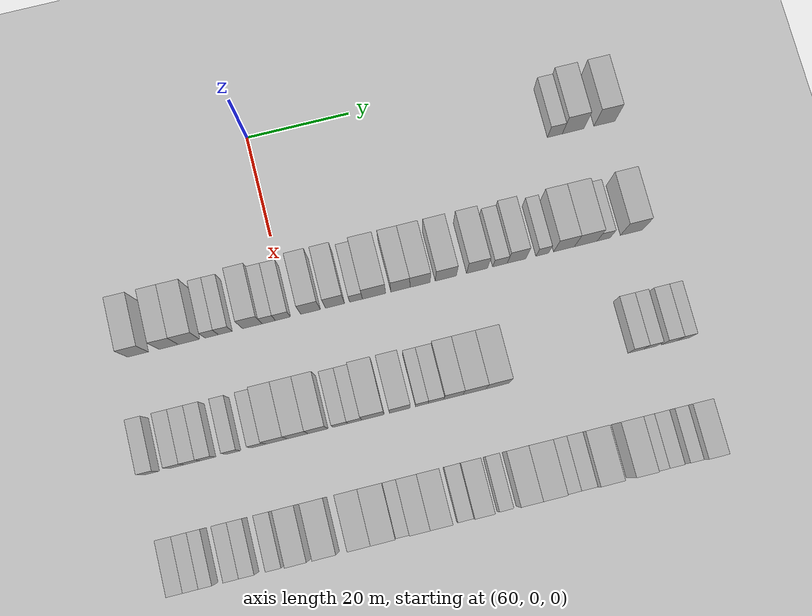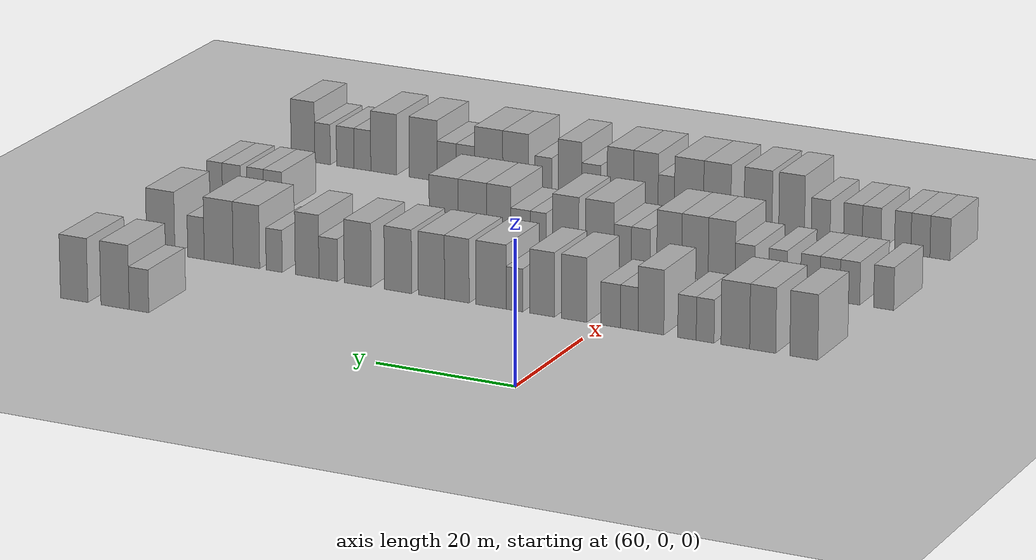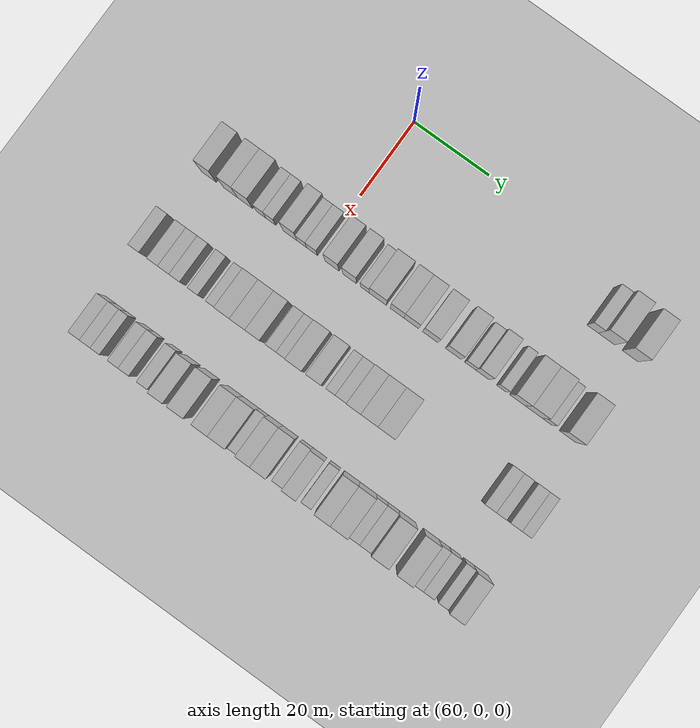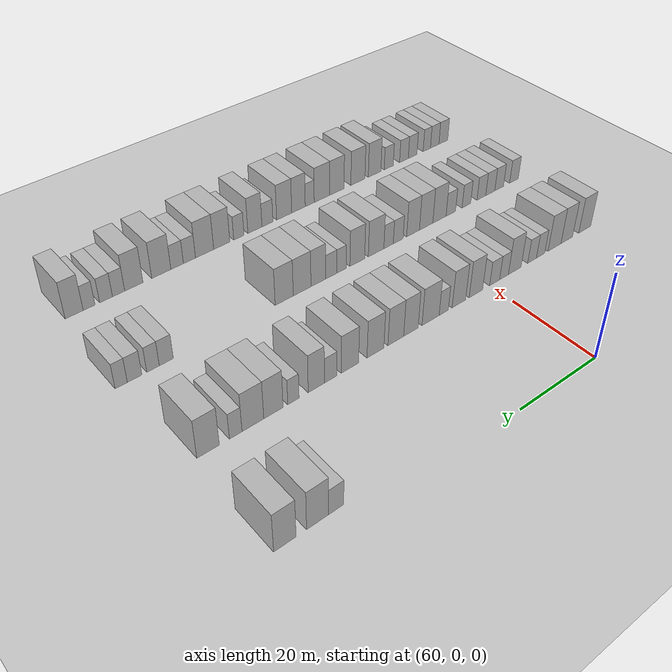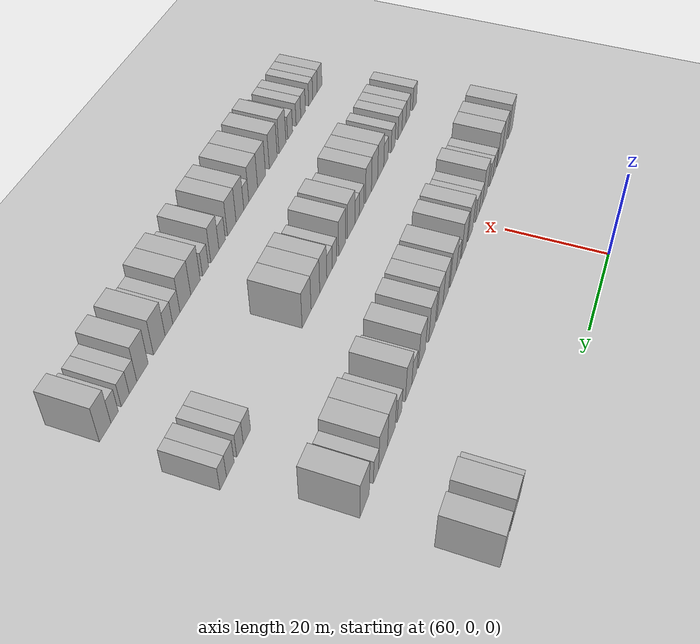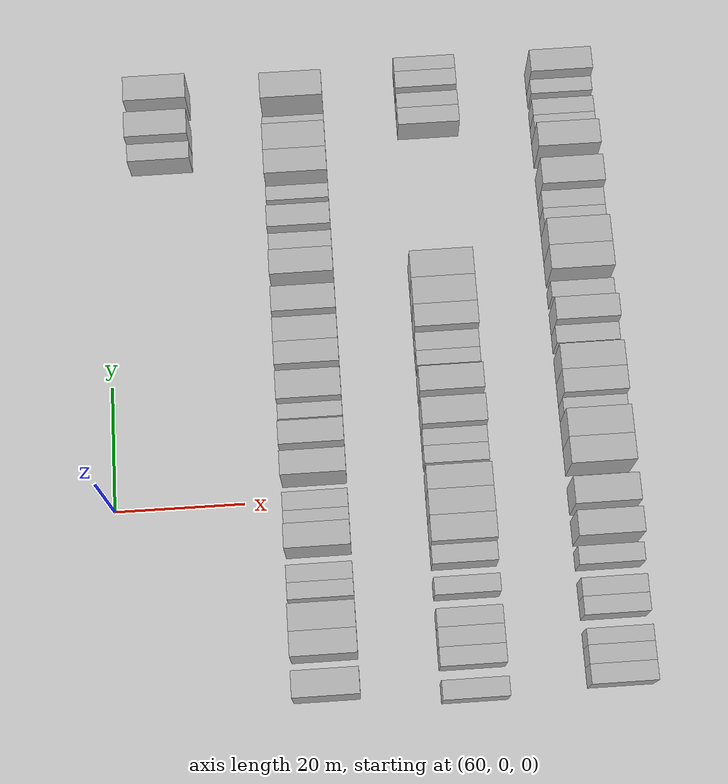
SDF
<sdf version="1.6">
 <world name="default">
  <include>
   <name>ground_plane_2</name>
   <uri>model://HANNAS_ground_plane</uri>
   <pose>100 0 0  0 0 0</pose>
  </include>
  <model name="building_491">
   <static>1</static>
   <pose>69.0000 57.5146 0 0.000000 0.000000 0.000000</pose>
   <link name="link">
    <pose>0 0 3.00 0 0 0</pose>
    <collision name="collision"><geometry><box><size>10.0000 2.9836 6.0000</size></box></geometry></collision>
    <visual name="visual">
     <cast_shadows>0</cast_shadows>
     <geometry><box><size>10.0000 2.9836 6.0000</size></box></geometry>
     <material>
      <script>
       <uri>model://HANNAS_wall/materials/scripts</uri>
       <uri>model://HANNAS_wall/materials/textures</uri>
       <name>vrc/HANNAS_wall</name>
      </script>
     </material>
    </visual>
   </link>
  </model>
  <model name="building_492">
   <static>1</static>
   <pose>69.0000 61.1637 0 0.000000 0.000000 0.000000</pose>
   <link name="link">
    <pose>0 0 4.50 0 0 0</pose>
    <collision name="collision"><geometry><box><size>10.0000 4.3146 9.0000</size></box></geometry></collision>
    <visual name="visual">
     <cast_shadows>0</cast_shadows>
     <geometry><box><size>10.0000 4.3146 9.0000</size></box></geometry>
     <material>
      <script>
       <uri>model://HANNAS_wall/materials/scripts</uri>
       <uri>model://HANNAS_wall/materials/textures</uri>
       <name>vrc/HANNAS_wall</name>
      </script>
     </material>
    </visual>
   </link>
  </model>
  <model name="building_493">
   <static>1</static>
   <pose>69.0000 67.4195 0 0.000000 0.000000 0.000000</pose>
   <link name="link">
    <pose>0 0 4.50 0 0 0</pose>
    <collision name="collision"><geometry><box><size>10.0000 4.1971 9.0000</size></box></geometry></collision>
    <visual name="visual">
     <cast_shadows>0</cast_shadows>
     <geometry><box><size>10.0000 4.1971 9.0000</size></box></geometry>
     <material>
      <script>
       <uri>model://HANNAS_wall/materials/scripts</uri>
       <uri>model://HANNAS_wall/materials/textures</uri>
       <name>vrc/HANNAS_wall</name>
      </script>
     </material>
    </visual>
   </link>
  </model>
  <model name="building_651">
   <static>1</static>
   <pose>91.0000 -28.9269 0 0.000000 0.000000 0.000000</pose>
   <link name="link">
    <pose>0 0 4.50 0 0 0</pose>
    <collision name="collision"><geometry><box><size>10.0000 3.9373 9.0000</size></box></geometry></collision>
    <visual name="visual">
     <cast_shadows>0</cast_shadows>
     <geometry><box><size>10.0000 3.9373 9.0000</size></box></geometry>
     <material>
      <script>
       <uri>model://HANNAS_wall/materials/scripts</uri>
       <uri>model://HANNAS_wall/materials/textures</uri>
       <name>vrc/HANNAS_wall</name>
      </script>
     </material>
    </visual>
   </link>
  </model>
  <model name="building_652">
   <static>1</static>
   <pose>91.0000 -23.1058 0 0.000000 0.000000 0.000000</pose>
   <link name="link">
    <pose>0 0 4.50 0 0 0</pose>
    <collision name="collision"><geometry><box><size>10.0000 3.7049 9.0000</size></box></geometry></collision>
    <visual name="visual">
     <cast_shadows>0</cast_shadows>
     <geometry><box><size>10.0000 3.7049 9.0000</size></box></geometry>
     <material>
      <script>
       <uri>model://HANNAS_wall/materials/scripts</uri>
       <uri>model://HANNAS_wall/materials/textures</uri>
       <name>vrc/HANNAS_wall</name>
      </script>
     </material>
    </visual>
   </link>
  </model>
  <model name="building_653">
   <static>1</static>
   <pose>91.0000 -19.2137 0 0.000000 0.000000 0.000000</pose>
   <link name="link">
    <pose>0 0 4.50 0 0 0</pose>
    <collision name="collision"><geometry><box><size>10.0000 4.0794 9.0000</size></box></geometry></collision>
    <visual name="visual">
     <cast_shadows>0</cast_shadows>
     <geometry><box><size>10.0000 4.0794 9.0000</size></box></geometry>
     <material>
      <script>
       <uri>model://HANNAS_wall/materials/scripts</uri>
       <uri>model://HANNAS_wall/materials/textures</uri>
       <name>vrc/HANNAS_wall</name>
      </script>
     </material>
    </visual>
   </link>
  </model>
  <model name="building_654">
   <static>1</static>
   <pose>91.0000 -14.8965 0 0.000000 0.000000 0.000000</pose>
   <link name="link">
    <pose>0 0 3.00 0 0 0</pose>
    <collision name="collision"><geometry><box><size>10.0000 2.5549 6.0000</size></box></geometry></collision>
    <visual name="visual">
     <cast_shadows>0</cast_shadows>
     <geometry><box><size>10.0000 2.5549 6.0000</size></box></geometry>
     <material>
      <script>
       <uri>model://HANNAS_wall/materials/scripts</uri>
       <uri>model://HANNAS_wall/materials/textures</uri>
       <name>vrc/HANNAS_wall</name>
      </script>
     </material>
    </visual>
   </link>
  </model>
  <model name="building_655">
   <static>1</static>
   <pose>91.0000 -12.2929 0 0.000000 0.000000 0.000000</pose>
   <link name="link">
    <pose>0 0 3.00 0 0 0</pose>
    <collision name="collision"><geometry><box><size>10.0000 2.6524 6.0000</size></box></geometry></collision>
    <visual name="visual">
     <cast_shadows>0</cast_shadows>
     <geometry><box><size>10.0000 2.6524 6.0000</size></box></geometry>
     <material>
      <script>
       <uri>model://HANNAS_wall/materials/scripts</uri>
       <uri>model://HANNAS_wall/materials/textures</uri>
       <name>vrc/HANNAS_wall</name>
      </script>
     </material>
    </visual>
   </link>
  </model>
  <model name="building_656">
   <static>1</static>
   <pose>91.0000 -7.0963 0 0.000000 0.000000 0.000000</pose>
   <link name="link">
    <pose>0 0 4.50 0 0 0</pose>
    <collision name="collision"><geometry><box><size>10.0000 3.7407 9.0000</size></box></geometry></collision>
    <visual name="visual">
     <cast_shadows>0</cast_shadows>
     <geometry><box><size>10.0000 3.7407 9.0000</size></box></geometry>
     <material>
      <script>
       <uri>model://HANNAS_wall/materials/scripts</uri>
       <uri>model://HANNAS_wall/materials/textures</uri>
       <name>vrc/HANNAS_wall</name>
      </script>
     </material>
    </visual>
   </link>
  </model>
  <model name="building_657">
   <static>1</static>
   <pose>91.0000 -3.9490 0 0.000000 0.000000 0.000000</pose>
   <link name="link">
    <pose>0 0 3.00 0 0 0</pose>
    <collision name="collision"><geometry><box><size>10.0000 2.5539 6.0000</size></box></geometry></collision>
    <visual name="visual">
     <cast_shadows>0</cast_shadows>
     <geometry><box><size>10.0000 2.5539 6.0000</size></box></geometry>
     <material>
      <script>
       <uri>model://HANNAS_wall/materials/scripts</uri>
       <uri>model://HANNAS_wall/materials/textures</uri>
       <name>vrc/HANNAS_wall</name>
      </script>
     </material>
    </visual>
   </link>
  </model>
  <model name="building_658">
   <static>1</static>
   <pose>91.0000 -1.2357 0 0.000000 0.000000 0.000000</pose>
   <link name="link">
    <pose>0 0 3.00 0 0 0</pose>
    <collision name="collision"><geometry><box><size>10.0000 2.8727 6.0000</size></box></geometry></collision>
    <visual name="visual">
     <cast_shadows>0</cast_shadows>
     <geometry><box><size>10.0000 2.8727 6.0000</size></box></geometry>
     <material>
      <script>
       <uri>model://HANNAS_wall/materials/scripts</uri>
       <uri>model://HANNAS_wall/materials/textures</uri>
       <name>vrc/HANNAS_wall</name>
      </script>
     </material>
    </visual>
   </link>
  </model>
  <model name="building_659">
   <static>1</static>
   <pose>91.0000 4.0728 0 0.000000 0.000000 0.000000</pose>
   <link name="link">
    <pose>0 0 4.50 0 0 0</pose>
    <collision name="collision"><geometry><box><size>10.0000 3.7442 9.0000</size></box></geometry></collision>
    <visual name="visual">
     <cast_shadows>0</cast_shadows>
     <geometry><box><size>10.0000 3.7442 9.0000</size></box></geometry>
     <material>
      <script>
       <uri>model://HANNAS_wall/materials/scripts</uri>
       <uri>model://HANNAS_wall/materials/textures</uri>
       <name>vrc/HANNAS_wall</name>
      </script>
     </material>
    </visual>
   </link>
  </model>
  <model name="building_660">
   <static>1</static>
   <pose>91.0000 8.7760 0 0.000000 0.000000 0.000000</pose>
   <link name="link">
    <pose>0 0 4.50 0 0 0</pose>
    <collision name="collision"><geometry><box><size>10.0000 3.6623 9.0000</size></box></geometry></collision>
    <visual name="visual">
     <cast_shadows>0</cast_shadows>
     <geometry><box><size>10.0000 3.6623 9.0000</size></box></geometry>
     <material>
      <script>
       <uri>model://HANNAS_wall/materials/scripts</uri>
       <uri>model://HANNAS_wall/materials/textures</uri>
       <name>vrc/HANNAS_wall</name>
      </script>
     </material>
    </visual>
   </link>
  </model>
  <model name="building_661">
   <static>1</static>
   <pose>91.0000 12.8385 0 0.000000 0.000000 0.000000</pose>
   <link name="link">
    <pose>0 0 3.00 0 0 0</pose>
    <collision name="collision"><geometry><box><size>10.0000 2.4626 6.0000</size></box></geometry></collision>
    <visual name="visual">
     <cast_shadows>0</cast_shadows>
     <geometry><box><size>10.0000 2.4626 6.0000</size></box></geometry>
     <material>
      <script>
       <uri>model://HANNAS_wall/materials/scripts</uri>
       <uri>model://HANNAS_wall/materials/textures</uri>
       <name>vrc/HANNAS_wall</name>
      </script>
     </material>
    </visual>
   </link>
  </model>
  <model name="building_662">
   <static>1</static>
   <pose>91.0000 16.3099 0 0.000000 0.000000 0.000000</pose>
   <link name="link">
    <pose>0 0 4.50 0 0 0</pose>
    <collision name="collision"><geometry><box><size>10.0000 4.4801 9.0000</size></box></geometry></collision>
    <visual name="visual">
     <cast_shadows>0</cast_shadows>
     <geometry><box><size>10.0000 4.4801 9.0000</size></box></geometry>
     <material>
      <script>
       <uri>model://HANNAS_wall/materials/scripts</uri>
       <uri>model://HANNAS_wall/materials/textures</uri>
       <name>vrc/HANNAS_wall</name>
      </script>
     </material>
    </visual>
   </link>
  </model>
  <model name="building_663">
   <static>1</static>
   <pose>91.0000 21.3868 0 0.000000 0.000000 0.000000</pose>
   <link name="link">
    <pose>0 0 4.50 0 0 0</pose>
    <collision name="collision"><geometry><box><size>10.0000 3.6738 9.0000</size></box></geometry></collision>
    <visual name="visual">
     <cast_shadows>0</cast_shadows>
     <geometry><box><size>10.0000 3.6738 9.0000</size></box></geometry>
     <material>
      <script>
       <uri>model://HANNAS_wall/materials/scripts</uri>
       <uri>model://HANNAS_wall/materials/textures</uri>
       <name>vrc/HANNAS_wall</name>
      </script>
     </material>
    </visual>
   </link>
  </model>
  <model name="building_664">
   <static>1</static>
   <pose>91.0000 25.1829 0 0.000000 0.000000 0.000000</pose>
   <link name="link">
    <pose>0 0 4.50 0 0 0</pose>
    <collision name="collision"><geometry><box><size>10.0000 3.9184 9.0000</size></box></geometry></collision>
    <visual name="visual">
     <cast_shadows>0</cast_shadows>
     <geometry><box><size>10.0000 3.9184 9.0000</size></box></geometry>
     <material>
      <script>
       <uri>model://HANNAS_wall/materials/scripts</uri>
       <uri>model://HANNAS_wall/materials/textures</uri>
       <name>vrc/HANNAS_wall</name>
      </script>
     </material>
    </visual>
   </link>
  </model>
  <model name="building_665">
   <static>1</static>
   <pose>91.0000 30.1892 0 0.000000 0.000000 0.000000</pose>
   <link name="link">
    <pose>0 0 4.50 0 0 0</pose>
    <collision name="collision"><geometry><box><size>10.0000 4.0942 9.0000</size></box></geometry></collision>
    <visual name="visual">
     <cast_shadows>0</cast_shadows>
     <geometry><box><size>10.0000 4.0942 9.0000</size></box></geometry>
     <material>
      <script>
       <uri>model://HANNAS_wall/materials/scripts</uri>
       <uri>model://HANNAS_wall/materials/textures</uri>
       <name>vrc/HANNAS_wall</name>
      </script>
     </material>
    </visual>
   </link>
  </model>
  <model name="building_666">
   <static>1</static>
   <pose>91.0000 36.2750 0 0.000000 0.000000 0.000000</pose>
   <link name="link">
    <pose>0 0 4.50 0 0 0</pose>
    <collision name="collision"><geometry><box><size>10.0000 4.0775 9.0000</size></box></geometry></collision>
    <visual name="visual">
     <cast_shadows>0</cast_shadows>
     <geometry><box><size>10.0000 4.0775 9.0000</size></box></geometry>
     <material>
      <script>
       <uri>model://HANNAS_wall/materials/scripts</uri>
       <uri>model://HANNAS_wall/materials/textures</uri>
       <name>vrc/HANNAS_wall</name>
      </script>
     </material>
    </visual>
   </link>
  </model>
  <model name="building_667">
   <static>1</static>
   <pose>91.0000 40.7343 0 0.000000 0.000000 0.000000</pose>
   <link name="link">
    <pose>0 0 3.00 0 0 0</pose>
    <collision name="collision"><geometry><box><size>10.0000 2.8411 6.0000</size></box></geometry></collision>
    <visual name="visual">
     <cast_shadows>0</cast_shadows>
     <geometry><box><size>10.0000 2.8411 6.0000</size></box></geometry>
     <material>
      <script>
       <uri>model://HANNAS_wall/materials/scripts</uri>
       <uri>model://HANNAS_wall/materials/textures</uri>
       <name>vrc/HANNAS_wall</name>
      </script>
     </material>
    </visual>
   </link>
  </model>
  <model name="building_668">
   <static>1</static>
   <pose>91.0000 43.9625 0 0.000000 0.000000 0.000000</pose>
   <link name="link">
    <pose>0 0 4.50 0 0 0</pose>
    <collision name="collision"><geometry><box><size>10.0000 3.6153 9.0000</size></box></geometry></collision>
    <visual name="visual">
     <cast_shadows>0</cast_shadows>
     <geometry><box><size>10.0000 3.6153 9.0000</size></box></geometry>
     <material>
      <script>
       <uri>model://HANNAS_wall/materials/scripts</uri>
       <uri>model://HANNAS_wall/materials/textures</uri>
       <name>vrc/HANNAS_wall</name>
      </script>
     </material>
    </visual>
   </link>
  </model>
  <model name="building_669">
   <static>1</static>
   <pose>91.0000 49.0032 0 0.000000 0.000000 0.000000</pose>
   <link name="link">
    <pose>0 0 3.00 0 0 0</pose>
    <collision name="collision"><geometry><box><size>10.0000 2.4660 6.0000</size></box></geometry></collision>
    <visual name="visual">
     <cast_shadows>0</cast_shadows>
     <geometry><box><size>10.0000 2.4660 6.0000</size></box></geometry>
     <material>
      <script>
       <uri>model://HANNAS_wall/materials/scripts</uri>
       <uri>model://HANNAS_wall/materials/textures</uri>
       <name>vrc/HANNAS_wall</name>
      </script>
     </material>
    </visual>
   </link>
  </model>
  <model name="building_670">
   <static>1</static>
   <pose>91.0000 53.2767 0 0.000000 0.000000 0.000000</pose>
   <link name="link">
    <pose>0 0 4.50 0 0 0</pose>
    <collision name="collision"><geometry><box><size>10.0000 4.0811 9.0000</size></box></geometry></collision>
    <visual name="visual">
     <cast_shadows>0</cast_shadows>
     <geometry><box><size>10.0000 4.0811 9.0000</size></box></geometry>
     <material>
      <script>
       <uri>model://HANNAS_wall/materials/scripts</uri>
       <uri>model://HANNAS_wall/materials/textures</uri>
       <name>vrc/HANNAS_wall</name>
      </script>
     </material>
    </visual>
   </link>
  </model>
  <model name="building_671">
   <static>1</static>
   <pose>91.0000 57.5613 0 0.000000 0.000000 0.000000</pose>
   <link name="link">
    <pose>0 0 4.50 0 0 0</pose>
    <collision name="collision"><geometry><box><size>10.0000 4.4879 9.0000</size></box></geometry></collision>
    <visual name="visual">
     <cast_shadows>0</cast_shadows>
     <geometry><box><size>10.0000 4.4879 9.0000</size></box></geometry>
     <material>
      <script>
       <uri>model://HANNAS_wall/materials/scripts</uri>
       <uri>model://HANNAS_wall/materials/textures</uri>
       <name>vrc/HANNAS_wall</name>
      </script>
     </material>
    </visual>
   </link>
  </model>
  <model name="building_672">
   <static>1</static>
   <pose>91.0000 61.0836 0 0.000000 0.000000 0.000000</pose>
   <link name="link">
    <pose>0 0 3.00 0 0 0</pose>
    <collision name="collision"><geometry><box><size>10.0000 2.5566 6.0000</size></box></geometry></collision>
    <visual name="visual">
     <cast_shadows>0</cast_shadows>
     <geometry><box><size>10.0000 2.5566 6.0000</size></box></geometry>
     <material>
      <script>
       <uri>model://HANNAS_wall/materials/scripts</uri>
       <uri>model://HANNAS_wall/materials/textures</uri>
       <name>vrc/HANNAS_wall</name>
      </script>
     </material>
    </visual>
   </link>
  </model>
  <model name="building_673">
   <static>1</static>
   <pose>91.0000 66.5628 0 0.000000 0.000000 0.000000</pose>
   <link name="link">
    <pose>0 0 4.50 0 0 0</pose>
    <collision name="collision"><geometry><box><size>10.0000 4.4018 9.0000</size></box></geometry></collision>
    <visual name="visual">
     <cast_shadows>0</cast_shadows>
     <geometry><box><size>10.0000 4.4018 9.0000</size></box></geometry>
     <material>
      <script>
       <uri>model://HANNAS_wall/materials/scripts</uri>
       <uri>model://HANNAS_wall/materials/textures</uri>
       <name>vrc/HANNAS_wall</name>
      </script>
     </material>
    </visual>
   </link>
  </model>
  <model name="building_836">
   <static>1</static>
   <pose>113.0000 -30.9699 0 0.000000 0.000000 0.000000</pose>
   <link name="link">
    <pose>0 0 3.00 0 0 0</pose>
    <collision name="collision"><geometry><box><size>10.0000 2.8843 6.0000</size></box></geometry></collision>
    <visual name="visual">
     <cast_shadows>0</cast_shadows>
     <geometry><box><size>10.0000 2.8843 6.0000</size></box></geometry>
     <material>
      <script>
       <uri>model://HANNAS_wall/materials/scripts</uri>
       <uri>model://HANNAS_wall/materials/textures</uri>
       <name>vrc/HANNAS_wall</name>
      </script>
     </material>
    </visual>
   </link>
  </model>
  <model name="building_837">
   <static>1</static>
   <pose>113.0000 -26.0948 0 0.000000 0.000000 0.000000</pose>
   <link name="link">
    <pose>0 0 3.00 0 0 0</pose>
    <collision name="collision"><geometry><box><size>10.0000 2.8660 6.0000</size></box></geometry></collision>
    <visual name="visual">
     <cast_shadows>0</cast_shadows>
     <geometry><box><size>10.0000 2.8660 6.0000</size></box></geometry>
     <material>
      <script>
       <uri>model://HANNAS_wall/materials/scripts</uri>
       <uri>model://HANNAS_wall/materials/textures</uri>
       <name>vrc/HANNAS_wall</name>
      </script>
     </material>
    </visual>
   </link>
  </model>
  <model name="building_838">
   <static>1</static>
   <pose>113.0000 -23.2029 0 0.000000 0.000000 0.000000</pose>
   <link name="link">
    <pose>0 0 3.00 0 0 0</pose>
    <collision name="collision"><geometry><box><size>10.0000 2.9177 6.0000</size></box></geometry></collision>
    <visual name="visual">
     <cast_shadows>0</cast_shadows>
     <geometry><box><size>10.0000 2.9177 6.0000</size></box></geometry>
     <material>
      <script>
       <uri>model://HANNAS_wall/materials/scripts</uri>
       <uri>model://HANNAS_wall/materials/textures</uri>
       <name>vrc/HANNAS_wall</name>
      </script>
     </material>
    </visual>
   </link>
  </model>
  <model name="building_839">
   <static>1</static>
   <pose>113.0000 -20.3544 0 0.000000 0.000000 0.000000</pose>
   <link name="link">
    <pose>0 0 3.00 0 0 0</pose>
    <collision name="collision"><geometry><box><size>10.0000 2.7794 6.0000</size></box></geometry></collision>
    <visual name="visual">
     <cast_shadows>0</cast_shadows>
     <geometry><box><size>10.0000 2.7794 6.0000</size></box></geometry>
     <material>
      <script>
       <uri>model://HANNAS_wall/materials/scripts</uri>
       <uri>model://HANNAS_wall/materials/textures</uri>
       <name>vrc/HANNAS_wall</name>
      </script>
     </material>
    </visual>
   </link>
  </model>
  <model name="building_840">
   <static>1</static>
   <pose>113.0000 -15.6222 0 0.000000 0.000000 0.000000</pose>
   <link name="link">
    <pose>0 0 3.00 0 0 0</pose>
    <collision name="collision"><geometry><box><size>10.0000 2.6849 6.0000</size></box></geometry></collision>
    <visual name="visual">
     <cast_shadows>0</cast_shadows>
     <geometry><box><size>10.0000 2.6849 6.0000</size></box></geometry>
     <material>
      <script>
       <uri>model://HANNAS_wall/materials/scripts</uri>
       <uri>model://HANNAS_wall/materials/textures</uri>
       <name>vrc/HANNAS_wall</name>
      </script>
     </material>
    </visual>
   </link>
  </model>
  <model name="building_841">
   <static>1</static>
   <pose>113.0000 -10.8391 0 0.000000 0.000000 0.000000</pose>
   <link name="link">
    <pose>0 0 3.00 0 0 0</pose>
    <collision name="collision"><geometry><box><size>10.0000 2.8813 6.0000</size></box></geometry></collision>
    <visual name="visual">
     <cast_shadows>0</cast_shadows>
     <geometry><box><size>10.0000 2.8813 6.0000</size></box></geometry>
     <material>
      <script>
       <uri>model://HANNAS_wall/materials/scripts</uri>
       <uri>model://HANNAS_wall/materials/textures</uri>
       <name>vrc/HANNAS_wall</name>
      </script>
     </material>
    </visual>
   </link>
  </model>
  <model name="building_842">
   <static>1</static>
   <pose>113.0000 -7.4130 0 0.000000 0.000000 0.000000</pose>
   <link name="link">
    <pose>0 0 4.50 0 0 0</pose>
    <collision name="collision"><geometry><box><size>10.0000 3.9710 9.0000</size></box></geometry></collision>
    <visual name="visual">
     <cast_shadows>0</cast_shadows>
     <geometry><box><size>10.0000 3.9710 9.0000</size></box></geometry>
     <material>
      <script>
       <uri>model://HANNAS_wall/materials/scripts</uri>
       <uri>model://HANNAS_wall/materials/textures</uri>
       <name>vrc/HANNAS_wall</name>
      </script>
     </material>
    </visual>
   </link>
  </model>
  <model name="building_843">
   <static>1</static>
   <pose>113.0000 -3.4613 0 0.000000 0.000000 0.000000</pose>
   <link name="link">
    <pose>0 0 4.50 0 0 0</pose>
    <collision name="collision"><geometry><box><size>10.0000 3.9324 9.0000</size></box></geometry></collision>
    <visual name="visual">
     <cast_shadows>0</cast_shadows>
     <geometry><box><size>10.0000 3.9324 9.0000</size></box></geometry>
     <material>
      <script>
       <uri>model://HANNAS_wall/materials/scripts</uri>
       <uri>model://HANNAS_wall/materials/textures</uri>
       <name>vrc/HANNAS_wall</name>
      </script>
     </material>
    </visual>
   </link>
  </model>
  <model name="building_844">
   <static>1</static>
   <pose>113.0000 0.3468 0 0.000000 0.000000 0.000000</pose>
   <link name="link">
    <pose>0 0 4.50 0 0 0</pose>
    <collision name="collision"><geometry><box><size>10.0000 3.6839 9.0000</size></box></geometry></collision>
    <visual name="visual">
     <cast_shadows>0</cast_shadows>
     <geometry><box><size>10.0000 3.6839 9.0000</size></box></geometry>
     <material>
      <script>
       <uri>model://HANNAS_wall/materials/scripts</uri>
       <uri>model://HANNAS_wall/materials/textures</uri>
       <name>vrc/HANNAS_wall</name>
      </script>
     </material>
    </visual>
   </link>
  </model>
  <model name="building_845">
   <static>1</static>
   <pose>113.0000 4.5794 0 0.000000 0.000000 0.000000</pose>
   <link name="link">
    <pose>0 0 3.00 0 0 0</pose>
    <collision name="collision"><geometry><box><size>10.0000 2.7812 6.0000</size></box></geometry></collision>
    <visual name="visual">
     <cast_shadows>0</cast_shadows>
     <geometry><box><size>10.0000 2.7812 6.0000</size></box></geometry>
     <material>
      <script>
       <uri>model://HANNAS_wall/materials/scripts</uri>
       <uri>model://HANNAS_wall/materials/textures</uri>
       <name>vrc/HANNAS_wall</name>
      </script>
     </material>
    </visual>
   </link>
  </model>
  <model name="building_846">
   <static>1</static>
   <pose>113.0000 7.2884 0 0.000000 0.000000 0.000000</pose>
   <link name="link">
    <pose>0 0 3.00 0 0 0</pose>
    <collision name="collision"><geometry><box><size>10.0000 2.6369 6.0000</size></box></geometry></collision>
    <visual name="visual">
     <cast_shadows>0</cast_shadows>
     <geometry><box><size>10.0000 2.6369 6.0000</size></box></geometry>
     <material>
      <script>
       <uri>model://HANNAS_wall/materials/scripts</uri>
       <uri>model://HANNAS_wall/materials/textures</uri>
       <name>vrc/HANNAS_wall</name>
      </script>
     </material>
    </visual>
   </link>
  </model>
  <model name="building_847">
   <static>1</static>
   <pose>113.0000 10.7335 0 0.000000 0.000000 0.000000</pose>
   <link name="link">
    <pose>0 0 4.50 0 0 0</pose>
    <collision name="collision"><geometry><box><size>10.0000 4.2534 9.0000</size></box></geometry></collision>
    <visual name="visual">
     <cast_shadows>0</cast_shadows>
     <geometry><box><size>10.0000 4.2534 9.0000</size></box></geometry>
     <material>
      <script>
       <uri>model://HANNAS_wall/materials/scripts</uri>
       <uri>model://HANNAS_wall/materials/textures</uri>
       <name>vrc/HANNAS_wall</name>
      </script>
     </material>
    </visual>
   </link>
  </model>
  <model name="building_848">
   <static>1</static>
   <pose>113.0000 15.8266 0 0.000000 0.000000 0.000000</pose>
   <link name="link">
    <pose>0 0 4.50 0 0 0</pose>
    <collision name="collision"><geometry><box><size>10.0000 3.9328 9.0000</size></box></geometry></collision>
    <visual name="visual">
     <cast_shadows>0</cast_shadows>
     <geometry><box><size>10.0000 3.9328 9.0000</size></box></geometry>
     <material>
      <script>
       <uri>model://HANNAS_wall/materials/scripts</uri>
       <uri>model://HANNAS_wall/materials/textures</uri>
       <name>vrc/HANNAS_wall</name>
      </script>
     </material>
    </visual>
   </link>
  </model>
  <model name="building_849">
   <static>1</static>
   <pose>113.0000 20.0008 0 0.000000 0.000000 0.000000</pose>
   <link name="link">
    <pose>0 0 3.00 0 0 0</pose>
    <collision name="collision"><geometry><box><size>10.0000 2.4155 6.0000</size></box></geometry></collision>
    <visual name="visual">
     <cast_shadows>0</cast_shadows>
     <geometry><box><size>10.0000 2.4155 6.0000</size></box></geometry>
     <material>
      <script>
       <uri>model://HANNAS_wall/materials/scripts</uri>
       <uri>model://HANNAS_wall/materials/textures</uri>
       <name>vrc/HANNAS_wall</name>
      </script>
     </material>
    </visual>
   </link>
  </model>
  <model name="building_850">
   <static>1</static>
   <pose>113.0000 22.6845 0 0.000000 0.000000 0.000000</pose>
   <link name="link">
    <pose>0 0 3.00 0 0 0</pose>
    <collision name="collision"><geometry><box><size>10.0000 2.9519 6.0000</size></box></geometry></collision>
    <visual name="visual">
     <cast_shadows>0</cast_shadows>
     <geometry><box><size>10.0000 2.9519 6.0000</size></box></geometry>
     <material>
      <script>
       <uri>model://HANNAS_wall/materials/scripts</uri>
       <uri>model://HANNAS_wall/materials/textures</uri>
       <name>vrc/HANNAS_wall</name>
      </script>
     </material>
    </visual>
   </link>
  </model>
  <model name="building_851">
   <static>1</static>
   <pose>113.0000 25.9970 0 0.000000 0.000000 0.000000</pose>
   <link name="link">
    <pose>0 0 4.50 0 0 0</pose>
    <collision name="collision"><geometry><box><size>10.0000 3.6730 9.0000</size></box></geometry></collision>
    <visual name="visual">
     <cast_shadows>0</cast_shadows>
     <geometry><box><size>10.0000 3.6730 9.0000</size></box></geometry>
     <material>
      <script>
       <uri>model://HANNAS_wall/materials/scripts</uri>
       <uri>model://HANNAS_wall/materials/textures</uri>
       <name>vrc/HANNAS_wall</name>
      </script>
     </material>
    </visual>
   </link>
  </model>
  <model name="building_852">
   <static>1</static>
   <pose>113.0000 30.0282 0 0.000000 0.000000 0.000000</pose>
   <link name="link">
    <pose>0 0 4.50 0 0 0</pose>
    <collision name="collision"><geometry><box><size>10.0000 4.3895 9.0000</size></box></geometry></collision>
    <visual name="visual">
     <cast_shadows>0</cast_shadows>
     <geometry><box><size>10.0000 4.3895 9.0000</size></box></geometry>
     <material>
      <script>
       <uri>model://HANNAS_wall/materials/scripts</uri>
       <uri>model://HANNAS_wall/materials/textures</uri>
       <name>vrc/HANNAS_wall</name>
      </script>
     </material>
    </visual>
   </link>
  </model>
  <model name="building_853">
   <static>1</static>
   <pose>113.0000 34.4255 0 0.000000 0.000000 0.000000</pose>
   <link name="link">
    <pose>0 0 4.50 0 0 0</pose>
    <collision name="collision"><geometry><box><size>10.0000 4.4051 9.0000</size></box></geometry></collision>
    <visual name="visual">
     <cast_shadows>0</cast_shadows>
     <geometry><box><size>10.0000 4.4051 9.0000</size></box></geometry>
     <material>
      <script>
       <uri>model://HANNAS_wall/materials/scripts</uri>
       <uri>model://HANNAS_wall/materials/textures</uri>
       <name>vrc/HANNAS_wall</name>
      </script>
     </material>
    </visual>
   </link>
  </model>
  <model name="building_854">
   <static>1</static>
   <pose>113.0000 61.0430 0 0.000000 0.000000 0.000000</pose>
   <link name="link">
    <pose>0 0 3.00 0 0 0</pose>
    <collision name="collision"><geometry><box><size>10.0000 2.9433 6.0000</size></box></geometry></collision>
    <visual name="visual">
     <cast_shadows>0</cast_shadows>
     <geometry><box><size>10.0000 2.9433 6.0000</size></box></geometry>
     <material>
      <script>
       <uri>model://HANNAS_wall/materials/scripts</uri>
       <uri>model://HANNAS_wall/materials/textures</uri>
       <name>vrc/HANNAS_wall</name>
      </script>
     </material>
    </visual>
   </link>
  </model>
  <model name="building_855">
   <static>1</static>
   <pose>113.0000 63.8061 0 0.000000 0.000000 0.000000</pose>
   <link name="link">
    <pose>0 0 3.00 0 0 0</pose>
    <collision name="collision"><geometry><box><size>10.0000 2.5828 6.0000</size></box></geometry></collision>
    <visual name="visual">
     <cast_shadows>0</cast_shadows>
     <geometry><box><size>10.0000 2.5828 6.0000</size></box></geometry>
     <material>
      <script>
       <uri>model://HANNAS_wall/materials/scripts</uri>
       <uri>model://HANNAS_wall/materials/textures</uri>
       <name>vrc/HANNAS_wall</name>
      </script>
     </material>
    </visual>
   </link>
  </model>
  <model name="building_856">
   <static>1</static>
   <pose>113.0000 67.5700 0 0.000000 0.000000 0.000000</pose>
   <link name="link">
    <pose>0 0 3.00 0 0 0</pose>
    <collision name="collision"><geometry><box><size>10.0000 2.9451 6.0000</size></box></geometry></collision>
    <visual name="visual">
     <cast_shadows>0</cast_shadows>
     <geometry><box><size>10.0000 2.9451 6.0000</size></box></geometry>
     <material>
      <script>
       <uri>model://HANNAS_wall/materials/scripts</uri>
       <uri>model://HANNAS_wall/materials/textures</uri>
       <name>vrc/HANNAS_wall</name>
      </script>
     </material>
    </visual>
   </link>
  </model>
  <model name="building_857">
   <static>1</static>
   <pose>113.0000 70.2630 0 0.000000 0.000000 0.000000</pose>
   <link name="link">
    <pose>0 0 3.00 0 0 0</pose>
    <collision name="collision"><geometry><box><size>10.0000 2.4409 6.0000</size></box></geometry></collision>
    <visual name="visual">
     <cast_shadows>0</cast_shadows>
     <geometry><box><size>10.0000 2.4409 6.0000</size></box></geometry>
     <material>
      <script>
       <uri>model://HANNAS_wall/materials/scripts</uri>
       <uri>model://HANNAS_wall/materials/textures</uri>
       <name>vrc/HANNAS_wall</name>
      </script>
     </material>
    </visual>
   </link>
  </model>
  <model name="building_1013">
   <static>1</static>
   <pose>135.0000 -30.1034 0 0.000000 0.000000 0.000000</pose>
   <link name="link">
    <pose>0 0 3.00 0 0 0</pose>
    <collision name="collision"><geometry><box><size>10.0000 2.9577 6.0000</size></box></geometry></collision>
    <visual name="visual">
     <cast_shadows>0</cast_shadows>
     <geometry><box><size>10.0000 2.9577 6.0000</size></box></geometry>
     <material>
      <script>
       <uri>model://HANNAS_wall/materials/scripts</uri>
       <uri>model://HANNAS_wall/materials/textures</uri>
       <name>vrc/HANNAS_wall</name>
      </script>
     </material>
    </visual>
   </link>
  </model>
  <model name="building_1014">
   <static>1</static>
   <pose>135.0000 -27.2250 0 0.000000 0.000000 0.000000</pose>
   <link name="link">
    <pose>0 0 3.00 0 0 0</pose>
    <collision name="collision"><geometry><box><size>10.0000 2.7991 6.0000</size></box></geometry></collision>
    <visual name="visual">
     <cast_shadows>0</cast_shadows>
     <geometry><box><size>10.0000 2.7991 6.0000</size></box></geometry>
     <material>
      <script>
       <uri>model://HANNAS_wall/materials/scripts</uri>
       <uri>model://HANNAS_wall/materials/textures</uri>
       <name>vrc/HANNAS_wall</name>
      </script>
     </material>
    </visual>
   </link>
  </model>
  <model name="building_1015">
   <static>1</static>
   <pose>135.0000 -24.6174 0 0.000000 0.000000 0.000000</pose>
   <link name="link">
    <pose>0 0 3.00 0 0 0</pose>
    <collision name="collision"><geometry><box><size>10.0000 2.4159 6.0000</size></box></geometry></collision>
    <visual name="visual">
     <cast_shadows>0</cast_shadows>
     <geometry><box><size>10.0000 2.4159 6.0000</size></box></geometry>
     <material>
      <script>
       <uri>model://HANNAS_wall/materials/scripts</uri>
       <uri>model://HANNAS_wall/materials/textures</uri>
       <name>vrc/HANNAS_wall</name>
      </script>
     </material>
    </visual>
   </link>
  </model>
  <model name="building_1016">
   <static>1</static>
   <pose>135.0000 -20.0160 0 0.000000 0.000000 0.000000</pose>
   <link name="link">
    <pose>0 0 3.00 0 0 0</pose>
    <collision name="collision"><geometry><box><size>10.0000 2.7870 6.0000</size></box></geometry></collision>
    <visual name="visual">
     <cast_shadows>0</cast_shadows>
     <geometry><box><size>10.0000 2.7870 6.0000</size></box></geometry>
     <material>
      <script>
       <uri>model://HANNAS_wall/materials/scripts</uri>
       <uri>model://HANNAS_wall/materials/textures</uri>
       <name>vrc/HANNAS_wall</name>
      </script>
     </material>
    </visual>
   </link>
  </model>
  <model name="building_1017">
   <static>1</static>
   <pose>135.0000 -17.2378 0 0.000000 0.000000 0.000000</pose>
   <link name="link">
    <pose>0 0 3.00 0 0 0</pose>
    <collision name="collision"><geometry><box><size>10.0000 2.7692 6.0000</size></box></geometry></collision>
    <visual name="visual">
     <cast_shadows>0</cast_shadows>
     <geometry><box><size>10.0000 2.7692 6.0000</size></box></geometry>
     <material>
      <script>
       <uri>model://HANNAS_wall/materials/scripts</uri>
       <uri>model://HANNAS_wall/materials/textures</uri>
       <name>vrc/HANNAS_wall</name>
      </script>
     </material>
    </visual>
   </link>
  </model>
  <model name="building_1018">
   <static>1</static>
   <pose>135.0000 -12.4425 0 0.000000 0.000000 0.000000</pose>
   <link name="link">
    <pose>0 0 3.00 0 0 0</pose>
    <collision name="collision"><geometry><box><size>10.0000 2.8215 6.0000</size></box></geometry></collision>
    <visual name="visual">
     <cast_shadows>0</cast_shadows>
     <geometry><box><size>10.0000 2.8215 6.0000</size></box></geometry>
     <material>
      <script>
       <uri>model://HANNAS_wall/materials/scripts</uri>
       <uri>model://HANNAS_wall/materials/textures</uri>
       <name>vrc/HANNAS_wall</name>
      </script>
     </material>
    </visual>
   </link>
  </model>
  <model name="building_1019">
   <static>1</static>
   <pose>135.0000 -8.1003 0 0.000000 0.000000 0.000000</pose>
   <link name="link">
    <pose>0 0 4.50 0 0 0</pose>
    <collision name="collision"><geometry><box><size>10.0000 3.8628 9.0000</size></box></geometry></collision>
    <visual name="visual">
     <cast_shadows>0</cast_shadows>
     <geometry><box><size>10.0000 3.8628 9.0000</size></box></geometry>
     <material>
      <script>
       <uri>model://HANNAS_wall/materials/scripts</uri>
       <uri>model://HANNAS_wall/materials/textures</uri>
       <name>vrc/HANNAS_wall</name>
      </script>
     </material>
    </visual>
   </link>
  </model>
  <model name="building_1020">
   <static>1</static>
   <pose>135.0000 -3.0616 0 0.000000 0.000000 0.000000</pose>
   <link name="link">
    <pose>0 0 4.50 0 0 0</pose>
    <collision name="collision"><geometry><box><size>10.0000 4.2145 9.0000</size></box></geometry></collision>
    <visual name="visual">
     <cast_shadows>0</cast_shadows>
     <geometry><box><size>10.0000 4.2145 9.0000</size></box></geometry>
     <material>
      <script>
       <uri>model://HANNAS_wall/materials/scripts</uri>
       <uri>model://HANNAS_wall/materials/textures</uri>
       <name>vrc/HANNAS_wall</name>
      </script>
     </material>
    </visual>
   </link>
  </model>
  <model name="building_1021">
   <static>1</static>
   <pose>135.0000 3.1143 0 0.000000 0.000000 0.000000</pose>
   <link name="link">
    <pose>0 0 4.50 0 0 0</pose>
    <collision name="collision"><geometry><box><size>10.0000 4.1374 9.0000</size></box></geometry></collision>
    <visual name="visual">
     <cast_shadows>0</cast_shadows>
     <geometry><box><size>10.0000 4.1374 9.0000</size></box></geometry>
     <material>
      <script>
       <uri>model://HANNAS_wall/materials/scripts</uri>
       <uri>model://HANNAS_wall/materials/textures</uri>
       <name>vrc/HANNAS_wall</name>
      </script>
     </material>
    </visual>
   </link>
  </model>
  <model name="building_1022">
   <static>1</static>
   <pose>135.0000 7.3990 0 0.000000 0.000000 0.000000</pose>
   <link name="link">
    <pose>0 0 4.50 0 0 0</pose>
    <collision name="collision"><geometry><box><size>10.0000 4.4319 9.0000</size></box></geometry></collision>
    <visual name="visual">
     <cast_shadows>0</cast_shadows>
     <geometry><box><size>10.0000 4.4319 9.0000</size></box></geometry>
     <material>
      <script>
       <uri>model://HANNAS_wall/materials/scripts</uri>
       <uri>model://HANNAS_wall/materials/textures</uri>
       <name>vrc/HANNAS_wall</name>
      </script>
     </material>
    </visual>
   </link>
  </model>
  <model name="building_1023">
   <static>1</static>
   <pose>135.0000 10.8660 0 0.000000 0.000000 0.000000</pose>
   <link name="link">
    <pose>0 0 3.00 0 0 0</pose>
    <collision name="collision"><geometry><box><size>10.0000 2.5020 6.0000</size></box></geometry></collision>
    <visual name="visual">
     <cast_shadows>0</cast_shadows>
     <geometry><box><size>10.0000 2.5020 6.0000</size></box></geometry>
     <material>
      <script>
       <uri>model://HANNAS_wall/materials/scripts</uri>
       <uri>model://HANNAS_wall/materials/textures</uri>
       <name>vrc/HANNAS_wall</name>
      </script>
     </material>
    </visual>
   </link>
  </model>
  <model name="building_1024">
   <static>1</static>
   <pose>135.0000 13.9865 0 0.000000 0.000000 0.000000</pose>
   <link name="link">
    <pose>0 0 4.50 0 0 0</pose>
    <collision name="collision"><geometry><box><size>10.0000 3.7391 9.0000</size></box></geometry></collision>
    <visual name="visual">
     <cast_shadows>0</cast_shadows>
     <geometry><box><size>10.0000 3.7391 9.0000</size></box></geometry>
     <material>
      <script>
       <uri>model://HANNAS_wall/materials/scripts</uri>
       <uri>model://HANNAS_wall/materials/textures</uri>
       <name>vrc/HANNAS_wall</name>
      </script>
     </material>
    </visual>
   </link>
  </model>
  <model name="building_1025">
   <static>1</static>
   <pose>135.0000 17.8894 0 0.000000 0.000000 0.000000</pose>
   <link name="link">
    <pose>0 0 4.50 0 0 0</pose>
    <collision name="collision"><geometry><box><size>10.0000 4.0668 9.0000</size></box></geometry></collision>
    <visual name="visual">
     <cast_shadows>0</cast_shadows>
     <geometry><box><size>10.0000 4.0668 9.0000</size></box></geometry>
     <material>
      <script>
       <uri>model://HANNAS_wall/materials/scripts</uri>
       <uri>model://HANNAS_wall/materials/textures</uri>
       <name>vrc/HANNAS_wall</name>
      </script>
     </material>
    </visual>
   </link>
  </model>
  <model name="building_1026">
   <static>1</static>
   <pose>135.0000 22.3818 0 0.000000 0.000000 0.000000</pose>
   <link name="link">
    <pose>0 0 3.00 0 0 0</pose>
    <collision name="collision"><geometry><box><size>10.0000 2.9180 6.0000</size></box></geometry></collision>
    <visual name="visual">
     <cast_shadows>0</cast_shadows>
     <geometry><box><size>10.0000 2.9180 6.0000</size></box></geometry>
     <material>
      <script>
       <uri>model://HANNAS_wall/materials/scripts</uri>
       <uri>model://HANNAS_wall/materials/textures</uri>
       <name>vrc/HANNAS_wall</name>
      </script>
     </material>
    </visual>
   </link>
  </model>
  <model name="building_1027">
   <static>1</static>
   <pose>135.0000 25.6729 0 0.000000 0.000000 0.000000</pose>
   <link name="link">
    <pose>0 0 4.50 0 0 0</pose>
    <collision name="collision"><geometry><box><size>10.0000 3.6641 9.0000</size></box></geometry></collision>
    <visual name="visual">
     <cast_shadows>0</cast_shadows>
     <geometry><box><size>10.0000 3.6641 9.0000</size></box></geometry>
     <material>
      <script>
       <uri>model://HANNAS_wall/materials/scripts</uri>
       <uri>model://HANNAS_wall/materials/textures</uri>
       <name>vrc/HANNAS_wall</name>
      </script>
     </material>
    </visual>
   </link>
  </model>
  <model name="building_1028">
   <static>1</static>
   <pose>135.0000 29.8169 0 0.000000 0.000000 0.000000</pose>
   <link name="link">
    <pose>0 0 3.00 0 0 0</pose>
    <collision name="collision"><geometry><box><size>10.0000 2.6240 6.0000</size></box></geometry></collision>
    <visual name="visual">
     <cast_shadows>0</cast_shadows>
     <geometry><box><size>10.0000 2.6240 6.0000</size></box></geometry>
     <material>
      <script>
       <uri>model://HANNAS_wall/materials/scripts</uri>
       <uri>model://HANNAS_wall/materials/textures</uri>
       <name>vrc/HANNAS_wall</name>
      </script>
     </material>
    </visual>
   </link>
  </model>
  <model name="building_1029">
   <static>1</static>
   <pose>135.0000 34.1483 0 0.000000 0.000000 0.000000</pose>
   <link name="link">
    <pose>0 0 4.50 0 0 0</pose>
    <collision name="collision"><geometry><box><size>10.0000 4.0387 9.0000</size></box></geometry></collision>
    <visual name="visual">
     <cast_shadows>0</cast_shadows>
     <geometry><box><size>10.0000 4.0387 9.0000</size></box></geometry>
     <material>
      <script>
       <uri>model://HANNAS_wall/materials/scripts</uri>
       <uri>model://HANNAS_wall/materials/textures</uri>
       <name>vrc/HANNAS_wall</name>
      </script>
     </material>
    </visual>
   </link>
  </model>
  <model name="building_1030">
   <static>1</static>
   <pose>135.0000 38.3965 0 0.000000 0.000000 0.000000</pose>
   <link name="link">
    <pose>0 0 4.50 0 0 0</pose>
    <collision name="collision"><geometry><box><size>10.0000 4.4576 9.0000</size></box></geometry></collision>
    <visual name="visual">
     <cast_shadows>0</cast_shadows>
     <geometry><box><size>10.0000 4.4576 9.0000</size></box></geometry>
     <material>
      <script>
       <uri>model://HANNAS_wall/materials/scripts</uri>
       <uri>model://HANNAS_wall/materials/textures</uri>
       <name>vrc/HANNAS_wall</name>
      </script>
     </material>
    </visual>
   </link>
  </model>
  <model name="building_1031">
   <static>1</static>
   <pose>135.0000 42.0750 0 0.000000 0.000000 0.000000</pose>
   <link name="link">
    <pose>0 0 3.00 0 0 0</pose>
    <collision name="collision"><geometry><box><size>10.0000 2.8994 6.0000</size></box></geometry></collision>
    <visual name="visual">
     <cast_shadows>0</cast_shadows>
     <geometry><box><size>10.0000 2.8994 6.0000</size></box></geometry>
     <material>
      <script>
       <uri>model://HANNAS_wall/materials/scripts</uri>
       <uri>model://HANNAS_wall/materials/textures</uri>
       <name>vrc/HANNAS_wall</name>
      </script>
     </material>
    </visual>
   </link>
  </model>
  <model name="building_1032">
   <static>1</static>
   <pose>135.0000 45.0147 0 0.000000 0.000000 0.000000</pose>
   <link name="link">
    <pose>0 0 3.00 0 0 0</pose>
    <collision name="collision"><geometry><box><size>10.0000 2.9800 6.0000</size></box></geometry></collision>
    <visual name="visual">
     <cast_shadows>0</cast_shadows>
     <geometry><box><size>10.0000 2.9800 6.0000</size></box></geometry>
     <material>
      <script>
       <uri>model://HANNAS_wall/materials/scripts</uri>
       <uri>model://HANNAS_wall/materials/textures</uri>
       <name>vrc/HANNAS_wall</name>
      </script>
     </material>
    </visual>
   </link>
  </model>
  <model name="building_1033">
   <static>1</static>
   <pose>135.0000 48.7296 0 0.000000 0.000000 0.000000</pose>
   <link name="link">
    <pose>0 0 4.50 0 0 0</pose>
    <collision name="collision"><geometry><box><size>10.0000 4.4498 9.0000</size></box></geometry></collision>
    <visual name="visual">
     <cast_shadows>0</cast_shadows>
     <geometry><box><size>10.0000 4.4498 9.0000</size></box></geometry>
     <material>
      <script>
       <uri>model://HANNAS_wall/materials/scripts</uri>
       <uri>model://HANNAS_wall/materials/textures</uri>
       <name>vrc/HANNAS_wall</name>
      </script>
     </material>
    </visual>
   </link>
  </model>
  <model name="building_1034">
   <static>1</static>
   <pose>135.0000 55.0190 0 0.000000 0.000000 0.000000</pose>
   <link name="link">
    <pose>0 0 4.50 0 0 0</pose>
    <collision name="collision"><geometry><box><size>10.0000 4.1291 9.0000</size></box></geometry></collision>
    <visual name="visual">
     <cast_shadows>0</cast_shadows>
     <geometry><box><size>10.0000 4.1291 9.0000</size></box></geometry>
     <material>
      <script>
       <uri>model://HANNAS_wall/materials/scripts</uri>
       <uri>model://HANNAS_wall/materials/textures</uri>
       <name>vrc/HANNAS_wall</name>
      </script>
     </material>
    </visual>
   </link>
  </model>
  <model name="building_1035">
   <static>1</static>
   <pose>135.0000 58.4330 0 0.000000 0.000000 0.000000</pose>
   <link name="link">
    <pose>0 0 3.00 0 0 0</pose>
    <collision name="collision"><geometry><box><size>10.0000 2.6988 6.0000</size></box></geometry></collision>
    <visual name="visual">
     <cast_shadows>0</cast_shadows>
     <geometry><box><size>10.0000 2.6988 6.0000</size></box></geometry>
     <material>
      <script>
       <uri>model://HANNAS_wall/materials/scripts</uri>
       <uri>model://HANNAS_wall/materials/textures</uri>
       <name>vrc/HANNAS_wall</name>
      </script>
     </material>
    </visual>
   </link>
  </model>
  <model name="building_1036">
   <static>1</static>
   <pose>135.0000 61.1819 0 0.000000 0.000000 0.000000</pose>
   <link name="link">
    <pose>0 0 3.00 0 0 0</pose>
    <collision name="collision"><geometry><box><size>10.0000 2.7990 6.0000</size></box></geometry></collision>
    <visual name="visual">
     <cast_shadows>0</cast_shadows>
     <geometry><box><size>10.0000 2.7990 6.0000</size></box></geometry>
     <material>
      <script>
       <uri>model://HANNAS_wall/materials/scripts</uri>
       <uri>model://HANNAS_wall/materials/textures</uri>
       <name>vrc/HANNAS_wall</name>
      </script>
     </material>
    </visual>
   </link>
  </model>
  <model name="building_1037">
   <static>1</static>
   <pose>135.0000 64.8401 0 0.000000 0.000000 0.000000</pose>
   <link name="link">
    <pose>0 0 3.00 0 0 0</pose>
    <collision name="collision"><geometry><box><size>10.0000 2.5173 6.0000</size></box></geometry></collision>
    <visual name="visual">
     <cast_shadows>0</cast_shadows>
     <geometry><box><size>10.0000 2.5173 6.0000</size></box></geometry>
     <material>
      <script>
       <uri>model://HANNAS_wall/materials/scripts</uri>
       <uri>model://HANNAS_wall/materials/textures</uri>
       <name>vrc/HANNAS_wall</name>
      </script>
     </material>
    </visual>
   </link>
  </model>
  <model name="building_1038">
   <static>1</static>
   <pose>135.0000 68.0094 0 0.000000 0.000000 0.000000</pose>
   <link name="link">
    <pose>0 0 4.50 0 0 0</pose>
    <collision name="collision"><geometry><box><size>10.0000 3.8212 9.0000</size></box></geometry></collision>
    <visual name="visual">
     <cast_shadows>0</cast_shadows>
     <geometry><box><size>10.0000 3.8212 9.0000</size></box></geometry>
     <material>
      <script>
       <uri>model://HANNAS_wall/materials/scripts</uri>
       <uri>model://HANNAS_wall/materials/textures</uri>
       <name>vrc/HANNAS_wall</name>
      </script>
     </material>
    </visual>
   </link>
  </model>
 </world>
</sdf>
